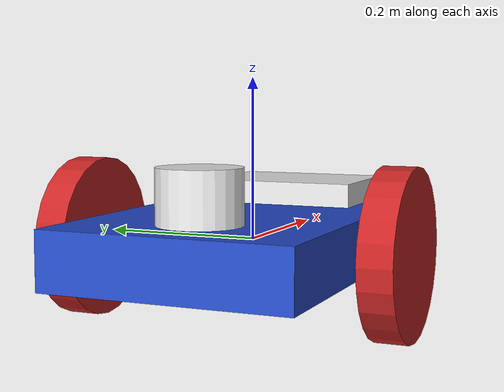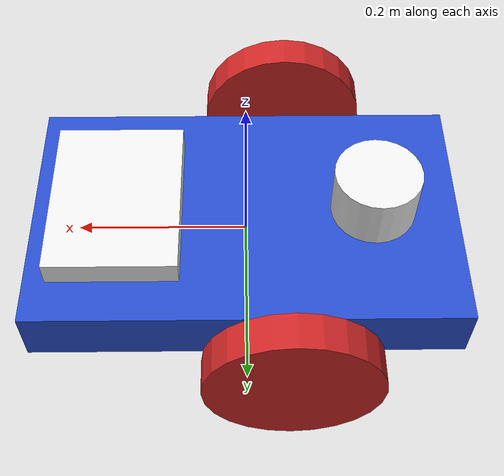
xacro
<?xml version="1.0" ?>
<robot name="m2wr" xmlns:xacro="http://www.ros.org/wiki/xacro">

  <xacro:include filename="$(find chappie)/src/urdf/materials.xacro" />
  <xacro:include filename="$(find chappie)/src/urdf/chappie.gazebo" />
  <xacro:include filename="$(find chappie)/src/urdf/macros.xacro" />

  <link name="link_chassis">
    <!-- pose and inertial -->
    <pose>0 0 0.1 0 0 0</pose>
    <!-- body -->
    <collision name="collision_chassis">
      <geometry>
        <box size="0.5 0.3 0.07"/>
      </geometry>
    </collision>
    <visual>
      <origin rpy="0 0 0" xyz="0 0 0"/>
      <geometry>
        <box size="0.5 0.3 0.07"/>
      </geometry>
      <material name="blue"/>
    </visual>
    <!-- caster front -->
    <collision name="caster_front_collision">
      <origin rpy=" 0 0 0" xyz="0.15 0 -0.05"/>
      <geometry>
        <sphere radius="0.05"/>
      </geometry>
      <surface>
        <friction>
          <ode>
            <mu>0</mu>
            <mu2>0</mu2>
            <slip1>1.0</slip1>
            <slip2>1.0</slip2>
          </ode>
        </friction>
      </surface>
    </collision>
    <visual name="caster_front_visual">
      <origin rpy=" 0 0 0" xyz="0.15 0 -0.05"/>
      <geometry>
        <sphere radius="0.05"/>
      </geometry>
    </visual>
  </link>
  <link name="sensor_laser">
    <inertial>
      <origin xyz="0 0 0" rpy="0 0 0" />
      <mass value="1" />
      <xacro:cylinder_inertia mass="1" r="0.05" l="0.1" />
    </inertial>

    <visual>
      <origin xyz="0 0 0" rpy="0 0 0" />
      <geometry>
        <cylinder radius="0.05" length="0.1"/>
      </geometry>
      <material name="white" />
    </visual>

    <collision>
      <origin xyz="0 0 0" rpy="0 0 0"/>
      <geometry>
        <cylinder radius="0.05" length="0.1"/>
      </geometry>
    </collision>
  </link>

  <link name="circuitry_back">
    <inertial>
      <origin xyz="0 0 0" rpy="0 0 0" />
      <mass value="1" />
      <xacro:box_inertia m="1" x="0.15" y="0" z="0.05"/>
    </inertial>

    <visual>
      <origin xyz="0 0 0" rpy="0 0 0" />
      <geometry>
        <box size="0.15 0.2 0.03"/>
      </geometry>
      <material name="white" />
    </visual>

    <collision>
      <origin xyz="0 0 0" rpy="0 0 0"/>
      <geometry>
        <box size="0.15 0.2 0.03"/>
      </geometry>
    </collision>
  </link>
 <sensor name='camera1' type='camera'>
    <camera name="head">
      <horizontal_fov>1.3962634</horizontal_fov>
      <image>
        <width>800</width>
        <height>800</height>
        <format>R8G8B8</format>
      </image>
      <clip>
        <near>0.02</near>
        <far>300</far>
      </clip>
    </camera>
    <always_on>1</always_on>
    <update_rate>30</update_rate>
    <visualize>1</visualize>
    <plugin name="camera_controller" filename="libgazebo_ros_camera.so">
    <alwaysOn>true</alwaysOn>
    <updateRate>0.0</updateRate>
    <cameraName>iris/camera</cameraName>
    <imageTopicName>image_raw</imageTopicName>
    <cameraInfoTopicName>camera_info</cameraInfoTopicName>
    <frameName>camera_link</frameName>
    <hackBaseline>0.07</hackBaseline>
    <distortionK1>0.0</distortionK1>
    <distortionK2>0.0</distortionK2>
    <distortionK3>0.0</distortionK3>
    <distortionT1>0.0</distortionT1>
    <distortionT2>0.0</distortionT2>
  </plugin>
  </sensor>
  <joint name="joint_sensor_laser" type="fixed">
    <origin xyz="-0.15 0 0.05" rpy="0 0 0"/>
    <parent link="link_chassis"/>
    <child link="sensor_laser"/>
  </joint>
  <joint name="joint_circuitry_back" type="fixed">
    <origin xyz="0.15 0 0.05" rpy="0 0 0"/>
    <parent link="link_chassis"/>
    <child link="circuitry_back"/>
  </joint>

  <xacro:link_wheel name="link_right_wheel" />
  <xacro:joint_wheel name="joint_right_wheel" child="link_right_wheel" origin_xyz="-0.05 0.20 0" />

  <xacro:link_wheel name="link_left_wheel" />
  <xacro:joint_wheel name="joint_left_wheel" child="link_left_wheel" origin_xyz="-0.05 -0.20 0" />
</robot>

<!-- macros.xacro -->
<robot xmlns:xacro="http://www.ros.org/wiki/xacro">
    <xacro:macro name="link_wheel" params="name">
        <link name="${name}">
            <inertial>
              <mass value="0.2"/>
              <origin rpy="0 1.5707 1.5707" xyz="0 0 0"/>
              <inertia ixx="0.000526666666667" ixy="0" ixz="0" iyy="0.000526666666667" iyz="0" izz="0.001"/>
            </inertial>
            <collision name="link_right_wheel_collision">
              <origin rpy="0 1.5707 1.5707" xyz="0 0 0"/>
              <geometry>
                <cylinder length="0.04" radius="0.1"/>
              </geometry>
            </collision>
            <visual name="${name}_visual">
              <origin rpy="0 1.5707 1.5707" xyz="0 0 0"/>
              <geometry>
                <cylinder length="0.04" radius="0.1"/>
              </geometry>
            </visual>
        </link>
    </xacro:macro>

    <xacro:macro name="joint_wheel" params="name child origin_xyz">
      <joint name="${name}" type="continuous">
        <origin rpy="0 0 0" xyz="${origin_xyz}"/>
        <child link="${child}"/>
        <parent link="link_chassis"/>
        <axis rpy="0 0 0" xyz="0 1 0"/>
        <limit effort="10000" velocity="1000"/>
        <joint_properties damping="1.0" friction="1.0"/>
      </joint>
    </xacro:macro>

    <xacro:macro name="cylinder_inertia" params="mass r l">
      <inertia  ixx="${mass*(3*r*r+l*l)/12}" ixy = "0" ixz = "0"
                iyy="${mass*(3*r*r+l*l)/12}" iyz = "0"
                izz="${mass*(r*r)/2}" />
    </xacro:macro>
    <xacro:macro name="box_inertia" params="m x y z">
      <inertia  ixx="${m*(y*y+z*z)/12}" ixy = "0" ixz = "0"
                iyy="${m*(x*x+z*z)/12}" iyz = "0"
                izz="${m*(x*x+z*z)/12}" />
    </xacro:macro>

</robot>
